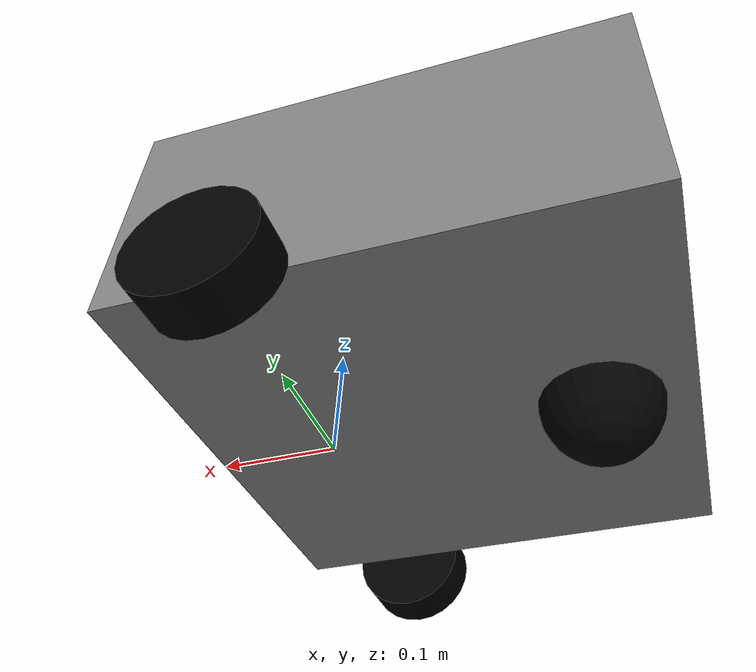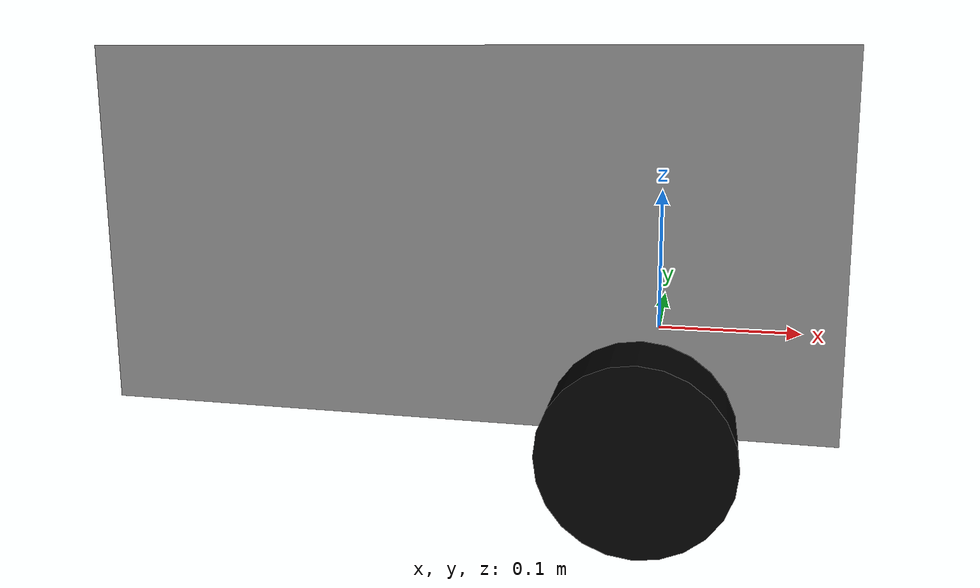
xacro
<?xml version="1.0" ?>
<robot xmlns:xacro="http://www.ros.org/wiki/xacro" name="mobro">
  <xacro:include filename="$(find mobro_description)/urdf/inertial_macro.xacro"/>

  <material name="Gray">
    <color rgba="0.5 0.5 0.5 1.0"/>
  </material>
  <material name="Black">
    <color rgba="0.0 0.0 0.0 1.0"/>
  </material>
  <material name="Red">
    <color rgba="1.0 0.0 0.0 1.0"/>
  </material>
  <material name="Blue">
    <color rgba="0.0 0.0 1.0 1.0"/>
  </material>
  <material name="Green">
    <color rgba="0.0 1.0 0.0 1.0"/>
  </material>
  <material name="White">
    <color rgba="1.0 1.0 1.0 1.0"/>
  </material>

  <link name="base_footprint">
  </link>

  <joint name="base_footprint_joint" type="fixed">
    <parent link="base_footprint"/>
    <child link="base_link"/>
    <origin xyz="0 0 0" rpy="0 0 0"/>
  </joint>

  <link name="base_link">
    <xacro:inertial_box mass="1.0" x="0.4" y="0.4" z="0.2">
      <origin rpy="0 0 0" xyz="-0.1 0 0.1"/>
    </xacro:inertial_box>
    <visual>
      <origin rpy="0 0 0" xyz="-0.1 0 0.1"/>
      <geometry>
        <box size="0.4 0.4 0.2"/>
      </geometry>
      <material name="Gray"/>
    </visual>
    <collision>
      <origin rpy="0 0 0" xyz="-0.1 0 0.1"/>
      <geometry>
        <box size="0.4 0.4 0.2"/>
      </geometry>
    </collision>
  </link>

  <gazebo reference="base_link">
      <material>Gazebo/White</material>
  </gazebo>

  <joint name="left_joint" type="continuous">
    <parent link="base_link"/>
    <child link="left_wheel"/>
    <origin rpy="-${pi/2} 0 0" xyz="0 0.22 0"/>
    <axis xyz="0 0 1"/>
  </joint>

  <link name="left_wheel">
    <xacro:inertial_cylinder mass="0.5" length="0.04" radius="0.05">
      <origin rpy="0 0 0" xyz="0 0 0"/>
    </xacro:inertial_cylinder>
    <visual>
      <origin rpy="0 0 0" xyz="0 0 0"/>
      <geometry>
        <cylinder length="0.04" radius="0.05"/>
      </geometry>
      <material name="Black"/>
    </visual>
    <!-- set sphere since it is simulation which has ideal conditions -->
    <collision>
      <origin rpy="0 0 0" xyz="0 0 0"/>
      <geometry>
        <sphere radius="0.05"/>
      </geometry>
    </collision>
  </link>

  <gazebo reference="left_wheel">
      <material>Gazebo/Black</material>
      <mu1>1.0</mu1>
      <mu2>1.0</mu2>
  </gazebo>

  <joint name="right_joint" type="continuous">
    <parent link="base_link"/>
    <child link="right_wheel"/>
    <origin rpy="${pi/2} 0 0" xyz="0 -0.22 0"/>
    <axis xyz="0 0 -1"/>
  </joint>

  <link name="right_wheel">
    <xacro:inertial_cylinder mass="0.5" length="0.04" radius="0.05">
      <origin rpy="0 0 0" xyz="0 0 0"/>
    </xacro:inertial_cylinder>
    <visual>
      <origin rpy="0 0 0" xyz="0 0 0"/>
      <geometry>
        <cylinder length="0.04" radius="0.05"/>
      </geometry>
      <material name="Black"/>
    </visual>

    <!-- set sphere since it is simulation which has ideal conditions -->
    <collision>
      <origin rpy="0 0 0" xyz="0 0 0"/>
      <geometry>
        <sphere radius="0.05"/>
      </geometry>
    </collision>
  </link>

  <gazebo reference="right_wheel">
      <material>Gazebo/Black</material>
      <mu1>1.0</mu1>
      <mu2>1.0</mu2>
  </gazebo>

  <joint name="front_caster_joint" type="fixed">
    <parent link="base_link"/>
    <child link="front_caster_wheel"/>
    <origin rpy="0 0 0" xyz="-0.225 0 0"/>
  </joint>

  <link name="front_caster_wheel">
    <xacro:inertial_sphere mass="0.5" radius="0.05">
      <origin rpy="0 0 0" xyz="0 0 0"/>
    </xacro:inertial_sphere>
    <visual>
      <origin rpy="0 0 0" xyz="0 0 0"/>
      <geometry>
        <sphere radius="0.05"/>
      </geometry>
      <material name="Black"/>
    </visual>
    <collision>
      <origin rpy="0 0 0" xyz="0 0 0"/>
      <geometry>
        <sphere radius="0.05"/>
      </geometry>
    </collision>
  </link>

  <gazebo reference="front_caster_wheel">
      <material>Gazebo/Black</material>
      <mu1>0.001</mu1>
      <mu2>0.001</mu2>
  </gazebo>

</robot>

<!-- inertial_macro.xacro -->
<robot xmlns:xacro="http://www.ros.org/wiki/xacro">

    <!-- Inertial calculations in https://en.wikipedia.org/wiki/List_of_moments_of_inertia -->
    <!-- These make use of xacro's mathematical functionality -->

    <xacro:macro name="inertial_sphere" params="mass radius *origin">
        <inertial>
            <xacro:insert_block name="origin"/>
            <mass value="${mass}" />
            <inertia ixx="${(2/5) * mass * (radius*radius)}" ixy="0.0" ixz="0.0"
                    iyy="${(2/5) * mass * (radius*radius)}" iyz="0.0"
                    izz="${(2/5) * mass * (radius*radius)}" />
        </inertial>
    </xacro:macro>

    <xacro:macro name="inertial_box" params="mass x y z *origin">
        <inertial>
            <xacro:insert_block name="origin"/>
            <mass value="${mass}" />
            <inertia ixx="${(1/12) * mass * (y*y+z*z)}" ixy="0.0" ixz="0.0"
                    iyy="${(1/12) * mass * (x*x+z*z)}" iyz="0.0"
                    izz="${(1/12) * mass * (x*x+y*y)}" />
        </inertial>
    </xacro:macro>

    <xacro:macro name="inertial_cylinder" params="mass length radius *origin">
        <inertial>
            <xacro:insert_block name="origin"/>
            <mass value="${mass}" />
            <inertia ixx="${(1/12) * mass * (3*radius*radius + length*length)}" ixy="0.0" ixz="0.0"
                    iyy="${(1/12) * mass * (3*radius*radius + length*length)}" iyz="0.0"
                    izz="${(1/2) * mass * (radius*radius)}" />
        </inertial>
    </xacro:macro>

</robot>
